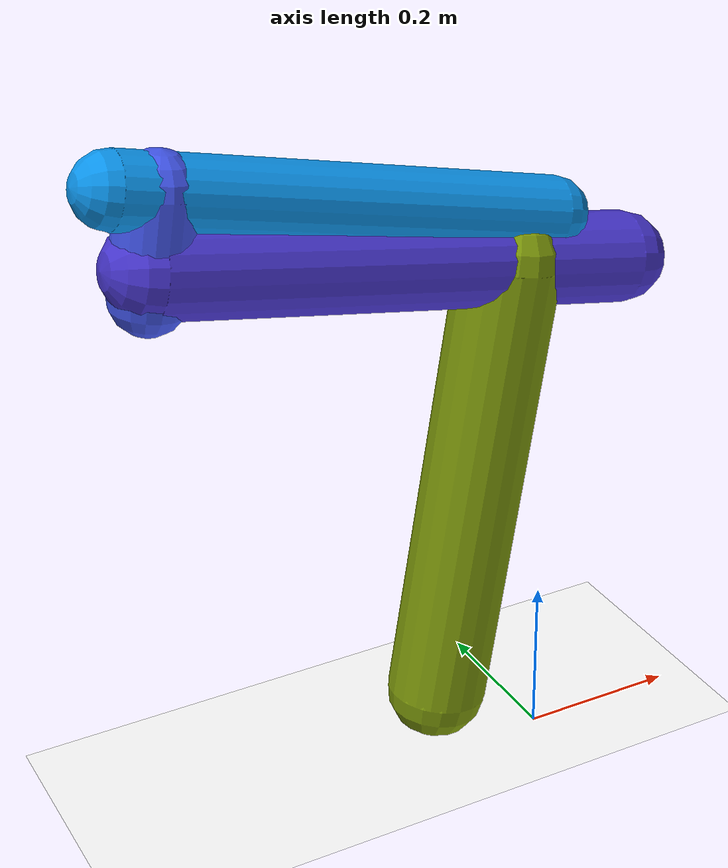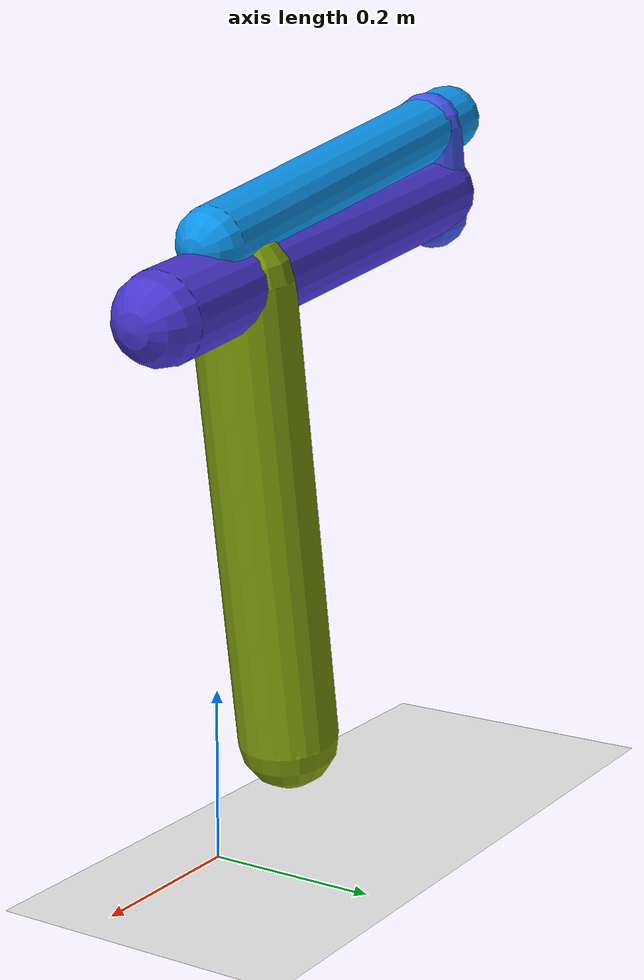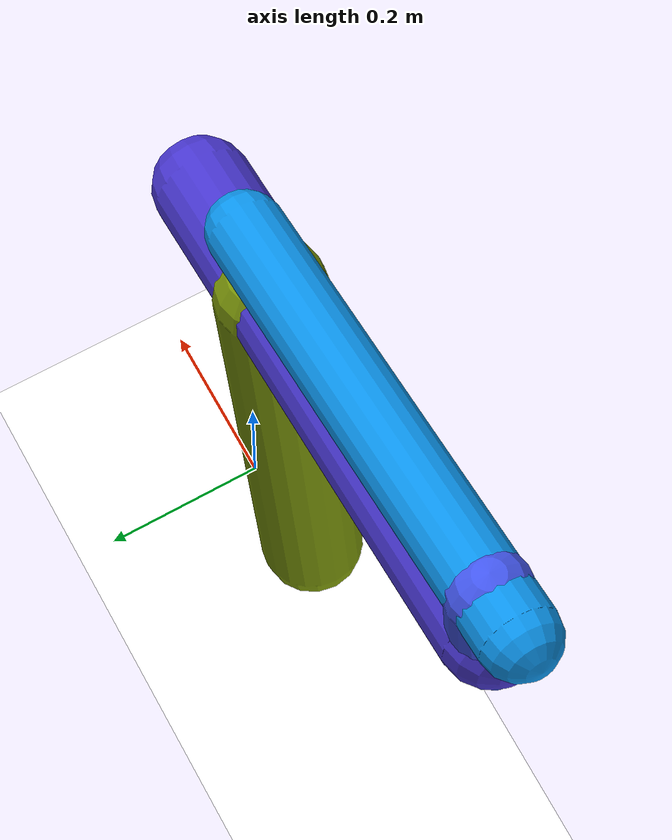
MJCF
<mujoco model="morphology">
  <option timestep="0.01"/>
  <default>
    <default class="/"/>
  </default>
  <asset>
    <texture name="texplane" type="2d" builtin="checker" rgb1="0.1 0.2 0.3" rgb2="0.2 0.3 0.4" width="300" height="300"/>
    <material name="MatPlane" class="/" texture="texplane" texrepeat="20 20" specular="1" shininess="1" reflectance="0.5"/>
  </asset>
  <worldbody>
    <light name="//unnamed_light_0" class="/" directional="true" pos="0 0 1.5" dir="0 0 -1.3" cutoff="1e+02" exponent="1" diffuse="1 1 1" specular="0.1 0.1 0.1"/>
    <geom name="ground" class="/" type="plane" size="15 15 0.5" material="MatPlane" rgba="1 1 1 1"/>
    <body name="body" pos="0 0 0.71">
      <geom name="geom0" class="/" type="capsule" contype="1" conaffinity="1" condim="3" size="0.042" rgba="0.044 0.58 0.92 1" friction="0.4 0.1 0.1" fromto="0 0 0 -0.52 0 0.12"/>
      <body name="body1" pos="-0.47 0 0.11">
        <geom name="geom1" class="/" type="capsule" contype="1" conaffinity="1" condim="3" size="0.044" rgba="0.26 0.34 0.93 1" friction="0.4 0.1 0.1" fromto="0 0 0 -0.018 0 -0.11"/>
        <body name="body2" pos="-0.014 0 -0.083">
          <geom name="geom2" class="/" type="capsule" contype="1" conaffinity="1" condim="3" size="0.054" rgba="0.28 0.21 0.81 1" friction="0.4 0.1 0.1" fromto="0 0 0 0.58 0 -0.1"/>
          <body name="body3" pos="0.43 0 -0.075">
            <geom name="geom3" class="/" type="capsule" contype="1" conaffinity="1" condim="3" size="0.061" rgba="0.5 0.61 0.043 1" friction="0.4 0.1 0.1" fromto="0 0 0 -0.093 0 -0.56"/>
            <joint name="joint3" class="/" type="hinge" axis="0 1 0" limited="true" stiffness="20" range="-59 59" armature="0.1" damping="2"/>
          </body>
          <joint name="joint2" class="/" type="hinge" axis="0 1 0" limited="true" stiffness="20" range="-44 44" armature="0.1" damping="2"/>
        </body>
        <joint name="joint1" class="/" type="hinge" axis="0 1 0" limited="true" stiffness="20" range="-63 63" armature="0.1" damping="2"/>
      </body>
      <joint name="rootx" class="/" type="slide" axis="1 0 0" limited="false" stiffness="0" armature="0" damping="0"/>
      <joint name="rootz" class="/" type="slide" axis="0 0 1" limited="false" stiffness="0" armature="0" damping="0"/>
      <joint name="rooty" class="/" type="hinge" axis="0 1 0" limited="false" stiffness="0" armature="0" damping="0"/>
    </body>
  </worldbody>
  <actuator>
    <motor name="motor3" class="/" ctrllimited="true" ctrlrange="-1 1" gear="1.2e+02" joint="joint3"/>
    <motor name="motor2" class="/" ctrllimited="true" ctrlrange="-1 1" gear="1.1e+02" joint="joint2"/>
    <motor name="motor1" class="/" ctrllimited="true" ctrlrange="-1 1" gear="1.4e+02" joint="joint1"/>
  </actuator>
  <sensor>
    <subtreelinvel name="velocity" body="body"/>
  </sensor>
</mujoco>
